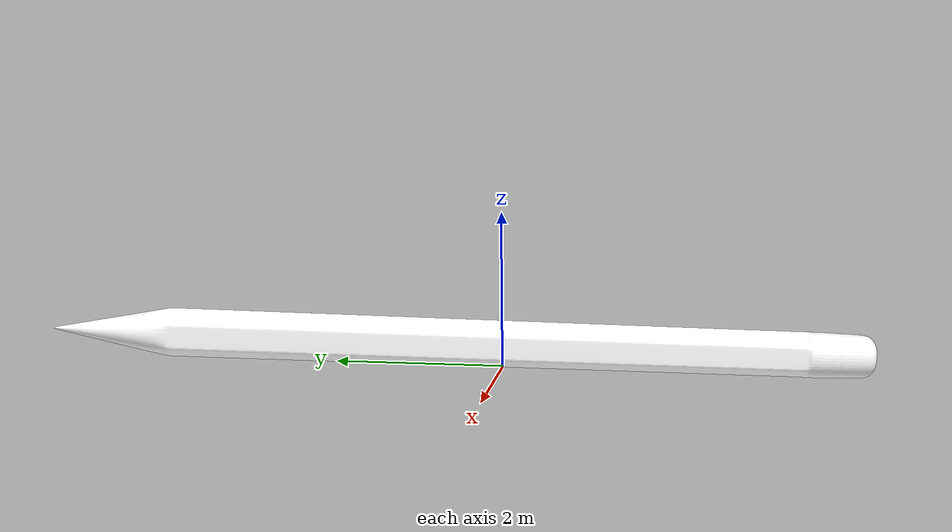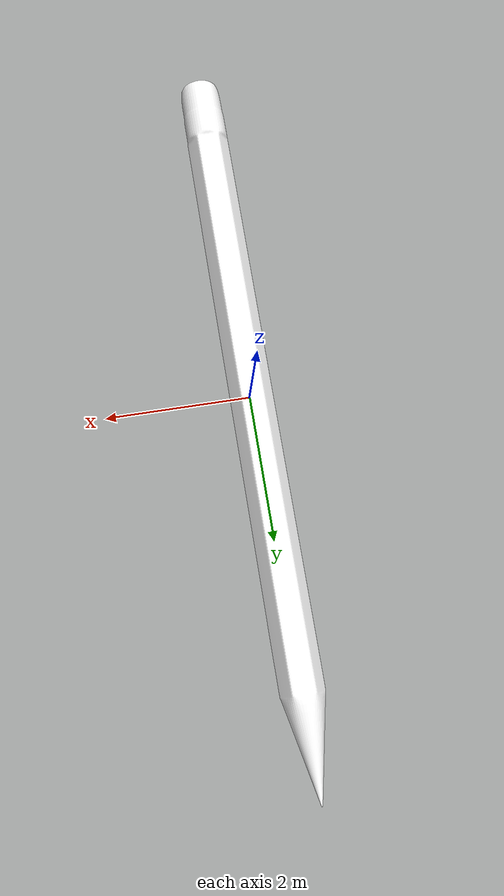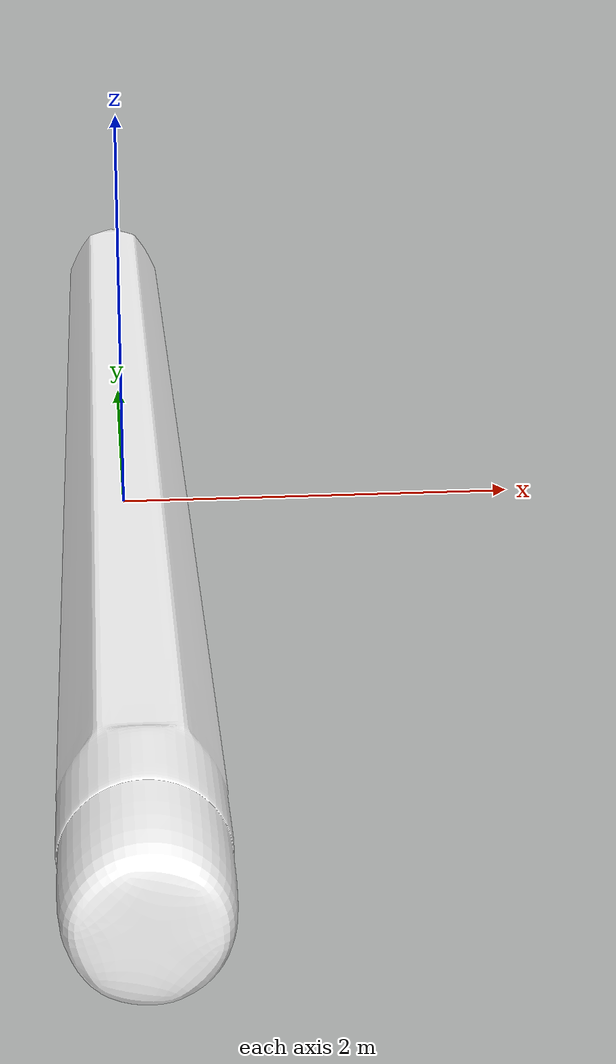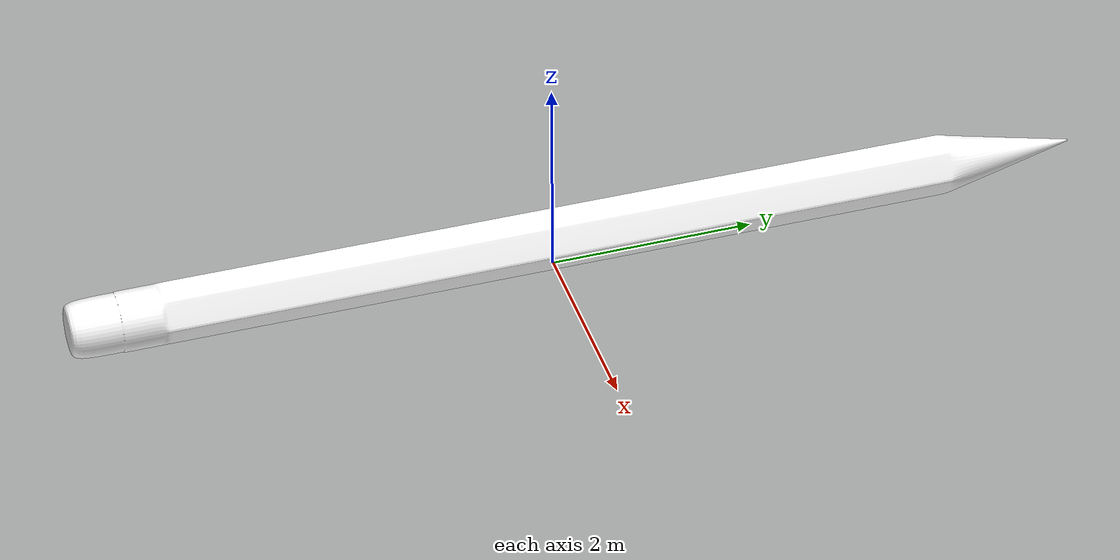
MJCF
<mujoco model="pen">
  <asset>
    <!-- 导入 OBJ 几何 -->
    <mesh name="pen_mesh" file="10303_pencil_V1_iterations-2.obj"/>
    <!-- 定义材质并贴上 png 纹理 -->
    <texture name="pen_tex" type="2d" file="10303_pencil_V1_Diffuse.png"/>
    <material name="pen_mat" texture="pen_tex" specular="0.3" shininess="0.8"/>
  </asset>

  <worldbody>
    <!-- 使用 mesh 几何并绑定材质 -->
    <body name="pen" pos="0 0 0">
      <geom type="mesh" mesh="pen_mesh" material="pen_mat" rgba="1 1 1 1"/>
    </body>
  </worldbody>
</mujoco>
